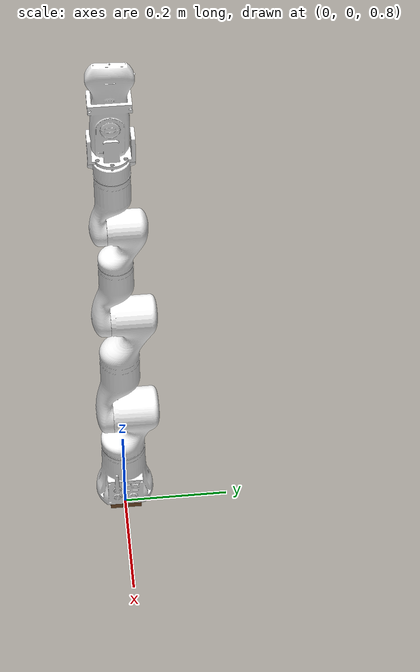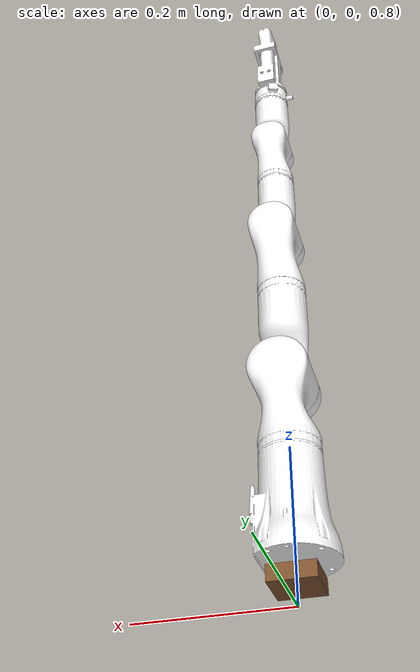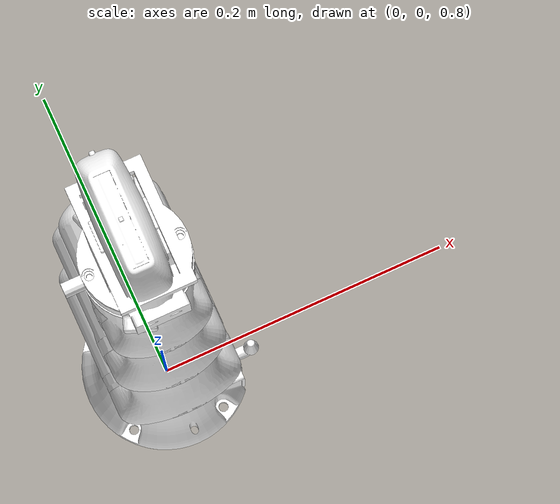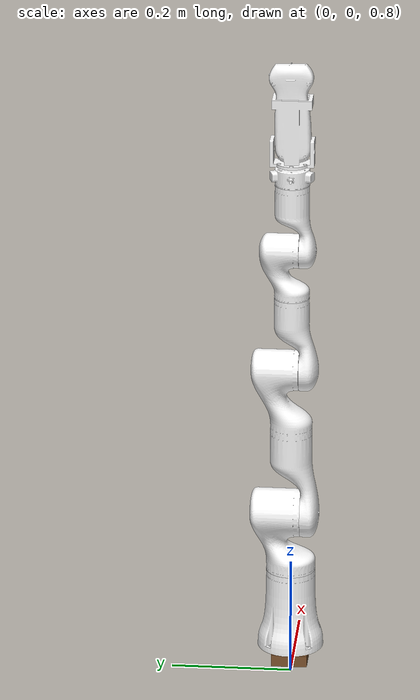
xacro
<?xml version="1.0" encoding="utf-8"?>
<robot  name="rm_65" xmlns:xacro="http://www.ros.org/wiki/xacro">
<xacro:include filename="$(find rm_description)/urdf/RM65/rm_65.transmission.xacro"/>
<xacro:include filename="$(find rm_description)/urdf/RM65/rm_65.gazebo.xacro"/>
  <!-- Inertial matrix -->
  <xacro:macro name="inertial_matrix" params="mass">
    <inertial>
      <mass value="${mass}" />
      <inertia ixx="1.0" ixy="0.0" ixz="0.0" iyy="0.5" iyz="0.0" izz="1.0" />
	</inertial>
  </xacro:macro>
  <xacro:macro name="Box_inertial_matrix" params="m l w h">
    <inertial>
      <mass value="${m}" />
        <inertia ixx="${m*(h*h + l*l)/12}" ixy = "0" ixz = "0"
          iyy="${m*(w*w + l*l)/12}" iyz= "0"
          izz="${m*(w*w + h*h)/12}" />
    </inertial>
  </xacro:macro>
  <link name="world">
  </link>

  <!-- ///////////////////////////////////////   bottom_joint   ////////////////////////////////////////// -->
  <joint name="bottom_joint" type="fixed">
    <origin xyz="0 0 0" rpy="0 0 0" />
    <parent link="base_link"/>
    <child link="bottom_link"/>
  </joint>
  <link name="bottom_link">
    <visual>
      <origin xyz=" 0 0 -0.02"  rpy="0 0 0"/>
      <geometry>
        <box size="0.06 0.06 0.02" />
      </geometry>
      <material name="Brown" />
    </visual>
    <collision>
      <origin xyz=" 0 0 0"  rpy="0 0 0"/>
      <geometry>
        <box size="0.06 0.06 0.02" />
      </geometry>
    </collision>
    <xacro:Box_inertial_matrix m="500" l="1" w="1" h="0.02"/>
  </link>

  <link
    name="base_link">
    <inertial>
      <origin
        xyz="-0.000433277303987328 -3.54664423471128E-05 0.0599427668933796"
        rpy="0 0 0" />
      <mass
        value="0.841070778135659" />
      <inertia
        ixx="0.0017261110801622"
        ixy="2.52746264980217E-06"
        ixz="-3.67690303614961E-05"
        iyy="0.00170987405835604"
        iyz="1.67996364994424E-06"
        izz="0.000904023422915791" />
    </inertial>
    <visual>
      <origin
        xyz="0 0 0"
        rpy="0 0 0" />
      <geometry>
        <mesh
          filename="package://rm_description/meshes/RM65/base_link.STL" />
      </geometry>
      <material
        name="">
        <color
          rgba="1 1 1 1" />
      </material>
    </visual>
    <collision>
      <origin
        xyz="0 0 0"
        rpy="0 0 0" />
      <geometry>
        <mesh
          filename="package://rm_description/meshes/RM65/base_link.STL" />
      </geometry>
    </collision>
  </link>

  <gazebo reference="base_link">
    <mu1 value="200000.0"/>
    <mu2 value="200000.0"/>
    <kp value="100000000.0"/>
    <kd value="1.0"/>
  </gazebo>

  <joint name="world_to_base" type="fixed">
    <parent link="world" />
    <child link="base_link" />
    <origin xyz="0 0 0.85" rpy="0 0 0" />
  </joint>

  <link
    name="Link1">
    <inertial>
      <origin
        xyz="1.2226305431569E-08 0.0211079974844683 -0.0251854220842269"
        rpy="0 0 0" />
      <mass
        value="0.593563443690403" />
      <inertia
        ixx="0.00126614120341847"
        ixy="-1.294980943835E-08"
        ixz="-9.80120923066996E-09"
        iyy="0.00118168178300364"
        iyz="-0.00021121727444415"
        izz="0.00056135241627747" />
    </inertial>
    <visual>
      <origin
        xyz="0 0 0"
        rpy="0 0 0" />
      <geometry>
        <mesh
          filename="package://rm_description/meshes/RM65/link1.STL" />
      </geometry>
      <material
        name="">
        <color
          rgba="1 1 1 1" />
      </material>
    </visual>
    <collision>
      <origin
        xyz="0 0 0"
        rpy="0 0 0" />
      <geometry>
        <mesh
          filename="package://rm_description/meshes/RM65/link1.STL" />
      </geometry>
    </collision>
  </link>
  <joint
    name="joint1"
    type="revolute">
    <origin
      xyz="0 0 0.2405"
      rpy="0 0 0" />
    <parent
      link="base_link" />
    <child
      link="Link1" />
    <axis
      xyz="0 0 1" />
    <limit
      lower="-1.573"
      upper="1.573"
      effort="60"
      velocity="3.14" />
	<dynamics damping="50" friction="1"/>
  </joint>
  <link
    name="Link2">
    <inertial>
      <origin
        xyz="0.152256463426163 4.75383656106654E-07 -0.00620260383607792"
        rpy="0 0 0" />
      <mass
        value="0.864175046869043" />
      <inertia
        ixx="0.00089150298478414"
        ixy="-2.23268489334765E-08"
        ixz="0.00156246461035015"
        iyy="0.00733754343083901"
        iyz="6.28110889329165E-09"
        izz="0.00697869103915473" />
    </inertial>
    <visual>
      <origin
        xyz="0 0 0"
        rpy="0 0 0" />
      <geometry>
        <mesh
          filename="package://rm_description/meshes/RM65/link2.STL" />
      </geometry>
      <material
        name="">
        <color
          rgba="1 1 1 1" />
      </material>
    </visual>
    <collision>
      <origin
        xyz="0 0 0"
        rpy="0 0 0" />
      <geometry>
        <mesh
          filename="package://rm_description/meshes/RM65/link2.STL" />
      </geometry>
    </collision>
  </link>
  <joint
    name="joint2"
    type="revolute">
    <origin
      xyz="0 0 0"
      rpy="1.5708 -1.5708 0" />
    <parent
      link="Link1" />
    <child
      link="Link2" />
    <axis
      xyz="0 0 1" />
    <limit
      lower="-1.040"
      upper="1.040"
      effort="60"
      velocity="3.14" />
	<dynamics damping="50" friction="1"/>
  </joint>
  <link
    name="Link3">
    <inertial>
      <origin
        xyz="5.05312670989961E-06 -0.0595925663694732 0.010569069212336"
        rpy="0 0 0" />
      <mass
        value="0.289633681624654" />
      <inertia
        ixx="0.00063737100450158"
        ixy="-7.05261293649751E-08"
        ixz="-3.86643272239426E-08"
        iyy="0.00015648388095025"
        iyz="-0.00014461035994916"
        izz="0.000614178164773085" />
    </inertial>
    <visual>
      <origin
        xyz="0 0 0"
        rpy="0 0 0" />
      <geometry>
        <mesh
          filename="package://rm_description/meshes/RM65/link3.STL" />
      </geometry>
      <material
        name="">
        <color
          rgba="1 1 1 1" />
      </material>
    </visual>
    <collision>
      <origin
        xyz="0 0 0"
        rpy="0 0 0" />
      <geometry>
        <mesh
          filename="package://rm_description/meshes/RM65/link3.STL" />
      </geometry>
    </collision>
  </link>
  <joint
    name="joint3"
    type="revolute">
    <origin
      xyz="0.256 0 0"
      rpy="0 0 1.5708" />
    <parent
      link="Link2" />
    <child
      link="Link3" />
    <axis
      xyz="0 0 1" />
    <limit
      lower="-1.753"
      upper="1.753"
      effort="30"
      velocity="3.92" />
	<dynamics damping="50" friction="1"/>
  </joint>
  <link
    name="Link4">
    <inertial>
      <origin
        xyz="1.15516617405898E-06 -0.0180424468598241 -0.0215394748352687"
        rpy="0 0 0" />
      <mass
        value="0.239419768320061" />
      <inertia
        ixx="0.000285938919722783"
        ixy="3.07101359163101E-09"
        ixz="-2.21994118981953E-09"
        iyy="0.000262727540304212"
        iyz="4.4236583260078E-05"
        izz="0.000119888082791859" />
    </inertial>
    <visual>
      <origin
        xyz="0 0 0"
        rpy="0 0 0" />
      <geometry>
        <mesh
          filename="package://rm_description/meshes/RM65/link4.STL" />
      </geometry>
      <material
        name="">
        <color
          rgba="1 1 1 1" />
      </material>
    </visual>
    <collision>
      <origin
        xyz="0 0 0"
        rpy="0 0 0" />
      <geometry>
        <mesh
          filename="package://rm_description/meshes/RM65/link4.STL" />
      </geometry>
    </collision>
  </link>
  <joint
    name="joint4"
    type="revolute">
    <origin
      xyz="0 -0.21 0"
      rpy="1.5708 0 0" />
    <parent
      link="Link3" />
    <child
      link="Link4" />
    <axis
      xyz="0 0 1" />
    <limit
      lower="-2.611"
      upper="2.611"
      effort="10"
      velocity="3.92" />
	<dynamics damping="50" friction="1"/>
  </joint>
  <link
    name="Link5">
    <inertial>
      <origin
        xyz="3.19794786262152E-06 -0.0593808368101458 0.00736804250989326"
        rpy="0 0 0" />
      <mass
        value="0.218799761431678" />
      <inertia
        ixx="0.000350540363914072"
        ixy="-3.41781619975602E-08"
        ixz="-1.77056457224373E-08"
        iyy="0.000104927867487581"
        iyz="-7.82431228461971E-05"
        izz="0.000334482418423629" />
    </inertial>
    <visual>
      <origin
        xyz="0 0 0"
        rpy="0 0 0" />
      <geometry>
        <mesh
          filename="package://rm_description/meshes/RM65/link5.STL" />
      </geometry>
      <material
        name="">
        <color
          rgba="1 1 1 1" />
      </material>
    </visual>
    <collision>
      <origin
        xyz="0 0 0"
        rpy="0 0 0" />
      <geometry>
        <mesh
          filename="package://rm_description/meshes/RM65/link5.STL" />
      </geometry>
    </collision>
  </link>
  <joint
    name="joint5"
    type="revolute">
    <origin
      xyz="0 0 0"
      rpy="-1.5708 0 0" />
    <parent
      link="Link4" />
    <child
      link="Link5" />
    <axis
      xyz="0 0 1" />
    <limit
      lower="-1.738"
      upper="1.738"
      effort="10"
      velocity="3.92" />
	<dynamics damping="50" friction="1"/>
  </joint>
  <link
    name="Link6">
    <inertial>
      <origin
        xyz="0.000714234511756999 -0.000396718732824521 -0.0126723660946126"
        rpy="0 0 0" />
      <mass
        value="0.0649018034311231" />
      <inertia
        ixx="2.02766547502765E-05"
        ixy="-1.32505200276849E-06"
        ixz="-2.5845091522508E-08"
        iyy="1.87986725225022E-05"
        iyz="3.39471452125439E-09"
        izz="3.17885459163081E-05" />
    </inertial>
    <visual>
      <origin
        xyz="0 0 0"
        rpy="0 0 0" />
      <geometry>
        <mesh
          filename="package://rm_description/meshes/RM65/link6.STL" />
      </geometry>
      <material
        name="">
        <color
          rgba="1 1 1 1" />
      </material>
    </visual>
    <collision>
      <origin
        xyz="0 0 0"
        rpy="0 0 0" />
      <geometry>
        <mesh
          filename="package://rm_description/meshes/RM65/link6.STL" />
      </geometry>
    </collision>
  </link>
  <joint
    name="joint6"
    type="revolute">
    <origin
      xyz="0 -0.144 0"
      rpy="1.5708 0 0" />
    <parent
      link="Link5" />
    <child
      link="Link6" />
    <axis
      xyz="0 0 1" />
    <limit
      lower="-3.14"
      upper="3.14"
      effort="10"
      velocity="3.92" />
	<dynamics damping="50" friction="1"/>
  </joint>

  <!-- Transmissions for ROS Control -->
  <xacro:macro name="transmission_block" params="joint_name">
    <transmission name="tran1">
      <type>transmission_interface/SimpleTransmission</type>
      <joint name="${joint_name}">
        <hardwareInterface>hardware_interface/PositionJointInterface</hardwareInterface>
      </joint>
      <actuator name="motor1">
        <hardwareInterface>hardware_interface/PositionJointInterface</hardwareInterface>
        <mechanicalReduction>1</mechanicalReduction>
      </actuator>
    </transmission>
  </xacro:macro>

  <xacro:transmission_block joint_name="joint1"/>
  <xacro:transmission_block joint_name="joint2"/>
  <xacro:transmission_block joint_name="joint3"/>
  <xacro:transmission_block joint_name="joint4"/>
  <xacro:transmission_block joint_name="joint5"/>
  <xacro:transmission_block joint_name="joint6"/>

  <!-- ros_control plugin -->
  <gazebo>
    <plugin name="gazebo_ros_control" filename="libgazebo_ros_control.so">
      <robotNamespace>/arm</robotNamespace>
      <robotSimType>gazebo_ros_control/DefaultRobotHWSim</robotSimType>
      <legacyModeNS>true</legacyModeNS>
    </plugin>
  </gazebo>

  <!-- 包含工具的 Xacro 文件 -->
  <xacro:include filename="$(find conect_description)/urdf/conect_description.urdf.xacro"/>
    <!-- 定义连接工具和 Link6 的关节 -->
  <xacro:macro name="attach_tool_to_link6" params="joint_xyz joint_rpy">
      <joint name="link6_to_tool" type="fixed">
          <origin xyz="${joint_xyz}" rpy="${joint_rpy}" />
          <parent link="Link6" />
          <child link="tool_base_link" />
          <axis xyz="0 0 0" />
      </joint>
  </xacro:macro>
  <!-- 使用宏创建连接关节 -->
  <xacro:attach_tool_to_link6 joint_xyz="0 0 0.005" joint_rpy="0 0 1.57" />

</robot>

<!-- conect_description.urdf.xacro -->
<robot xmlns:xacro="http://www.ros.org/wiki/xacro" name="conect_description">

    <!-- 定义工具基座链接的参数 -->
    <xacro:property name="tool_base_link_inertia_xyz" value="-0.000222405740733957 -0.000481035601624011 0.0689230138059816" />
    <xacro:property name="tool_base_link_inertia_rpy" value="0 0 0" />
    <xacro:property name="tool_base_link_mass" value="0.116045321966342" />
    <xacro:property name="tool_base_link_ixx" value="0.000164904816177466" />
    <xacro:property name="tool_base_link_ixy" value="2.02488130216797E-07" />
    <xacro:property name="tool_base_link_ixz" value="1.50577434202425E-06" />
    <xacro:property name="tool_base_link_iyy" value="0.000202510715131649" />
    <xacro:property name="tool_base_link_iyz" value="8.60308417309894E-06" />
    <xacro:property name="tool_base_link_izz" value="5.69762169244189E-05" />
    <xacro:property name="tool_base_link_mesh" value="package://conect_description/meshes/tool_base_link.STL" />

    <!-- 定义工具末端链接的参数 -->
    <xacro:property name="tool_end_link_inertia_xyz" value="8.79459612690391E-05 -8.1632458962142E-05 -0.00099852848210466" />
    <xacro:property name="tool_end_link_inertia_rpy" value="0 0 0" />
    <xacro:property name="tool_end_link_mass" value="8.00000000000001E-06" />
    <xacro:property name="tool_end_link_ixx" value="5.33333333333336E-12" />
    <xacro:property name="tool_end_link_ixy" value="1.46216601377879E-27" />
    <xacro:property name="tool_end_link_ixz" value="1.41756869850412E-27" />
    <xacro:property name="tool_end_link_iyy" value="5.33333333333336E-12" />
    <xacro:property name="tool_end_link_iyz" value="-3.92889708655019E-28" />
    <xacro:property name="tool_end_link_izz" value="5.33333333333334E-12" />
    <xacro:property name="tool_end_link_mesh" value="package://conect_description/meshes/tool_end_link.STL" />

    <!-- 定义连接关节的参数 -->
    <xacro:property name="conect_joint_xyz" value="-0.00272826464929472 -0.00102217054955704 0.174" />
    <xacro:property name="conect_joint_rpy" value="0 0 0" />
    <xacro:property name="conect_joint_axis" value="0 0 0" />

    <!-- 定义链接模板宏 -->
    <xacro:macro name="link_template" params="name inertia_xyz inertia_rpy mass ixx ixy ixz iyy iyz izz mesh_file">
        <link name="${name}">
            <inertial>
                <origin xyz="${inertia_xyz}" rpy="${inertia_rpy}" />
                <mass value="${mass}" />
                <inertia ixx="${ixx}" ixy="${ixy}" ixz="${ixz}" iyy="${iyy}" iyz="${iyz}" izz="${izz}" />
            </inertial>
            <visual>
                <origin xyz="0 0 0" rpy="0 0 0" />
                <geometry>
                    <mesh filename="${mesh_file}" />
                </geometry>
                <material name="">
                    <color rgba="1 1 1 1" />
                </material>
            </visual>
            <collision>
                <origin xyz="0 0 0" rpy="0 0 0" />
                <geometry>
                    <mesh filename="${mesh_file}" />
                </geometry>
            </collision>
        </link>
    </xacro:macro>

    <!-- 定义固定关节模板宏 -->
    <xacro:macro name="fixed_joint_template" params="name parent child origin_xyz origin_rpy axis_xyz">
        <joint name="${name}" type="fixed">
            <origin xyz="${origin_xyz}" rpy="${origin_rpy}" />
            <parent link="${parent}" />
            <child link="${child}" />
            <axis xyz="${axis_xyz}" />
        </joint>
    </xacro:macro>

    <!-- 使用宏创建工具基座链接 -->
    <xacro:link_template
        name="tool_base_link"
        inertia_xyz="${tool_base_link_inertia_xyz}"
        inertia_rpy="${tool_base_link_inertia_rpy}"
        mass="${tool_base_link_mass}"
        ixx="${tool_base_link_ixx}"
        ixy="${tool_base_link_ixy}"
        ixz="${tool_base_link_ixz}"
        iyy="${tool_base_link_iyy}"
        iyz="${tool_base_link_iyz}"
        izz="${tool_base_link_izz}"
        mesh_file="${tool_base_link_mesh}" />

    <!-- 使用宏创建工具末端链接 -->
    <xacro:link_template
        name="tool_end_link"
        inertia_xyz="${tool_end_link_inertia_xyz}"
        inertia_rpy="${tool_end_link_inertia_rpy}"
        mass="${tool_end_link_mass}"
        ixx="${tool_end_link_ixx}"
        ixy="${tool_end_link_ixy}"
        ixz="${tool_end_link_ixz}"
        iyy="${tool_end_link_iyy}"
        iyz="${tool_end_link_iyz}"
        izz="${tool_end_link_izz}"
        mesh_file="${tool_end_link_mesh}" />

    <!-- 使用宏创建连接关节 -->
    <xacro:fixed_joint_template
        name="conect"
        parent="tool_base_link"
        child="tool_end_link"
        origin_xyz="${conect_joint_xyz}"
        origin_rpy="${conect_joint_rpy}"
        axis_xyz="${conect_joint_axis}" />

</robot>
